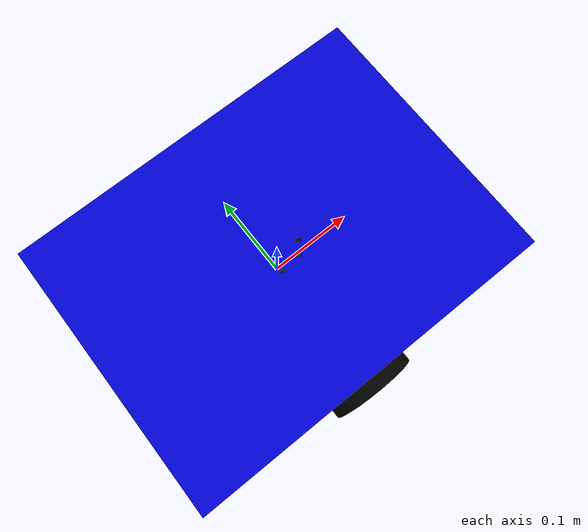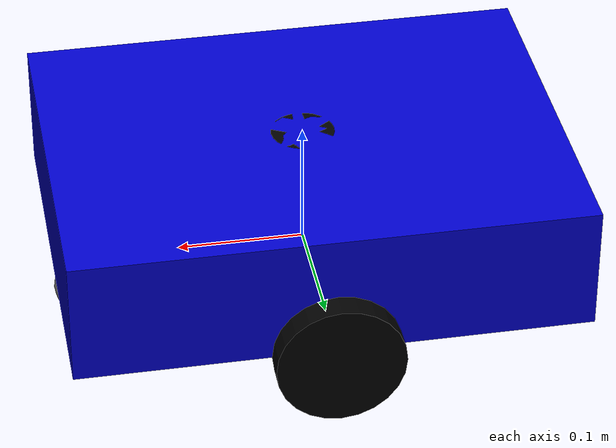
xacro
<?xml version="1.0"?>
<robot xmlns:xacro="http://www.ros.org/wiki/xacro" name="delivery_bot">

    <!-- Properties -->
    <xacro:property name="chassis_length" value="0.4"/>
    <xacro:property name="chassis_width" value="0.3"/>
    <xacro:property name="chassis_height" value="0.1"/>
    <xacro:property name="chassis_mass" value="5.0"/>

    <xacro:property name="wheel_radius" value="0.05"/>
    <xacro:property name="wheel_thickness" value="0.02"/>
    <xacro:property name="wheel_mass" value="0.5"/>
    <xacro:property name="wheel_offset_x" value="0.0"/> <!-- Offset from chassis center along X -->
    <xacro:property name="wheel_offset_y" value="${chassis_width / 2 + wheel_thickness / 2}"/> <!-- Offset from chassis center along Y -->
    <xacro:property name="wheel_offset_z" value="0.0"/> <!-- Offset from chassis bottom along Z -->

    <xacro:property name="caster_radius" value="0.025"/>
    <xacro:property name="caster_mass" value="0.2"/>
    <xacro:property name="caster_offset_x" value="${chassis_length / 2 - caster_radius}"/>

    <xacro:property name="lidar_size" value="0.05"/>
    <xacro:property name="lidar_mass" value="0.1"/>
    <xacro:property name="lidar_offset_z" value="${chassis_height / 2 + lidar_size / 2}"/>

    <!-- Material definitions (optional, for nicer visuals) -->
    <material name="blue">
        <color rgba="0.0 0.0 0.8 1.0"/>
    </material>
    <material name="black">
        <color rgba="0.0 0.0 0.0 1.0"/>
    </material>
    <material name="grey">
        <color rgba="0.5 0.5 0.5 1.0"/>
    </material>

    <!-- Base Link (Chassis) -->
    <link name="base_link">
        <visual>
            <geometry>
                <box size="${chassis_length} ${chassis_width} ${chassis_height}"/>
            </geometry>
            <origin xyz="0 0 ${chassis_height/2}" rpy="0 0 0"/>
            <material name="blue"/>
        </visual>
        <collision>
            <geometry>
                <box size="${chassis_length} ${chassis_width} ${chassis_height}"/>
            </geometry>
            <origin xyz="0 0 ${chassis_height/2}" rpy="0 0 0"/>
        </collision>
        <inertial>
            <mass value="${chassis_mass}"/>
            <inertia ixx="${(1/12) * chassis_mass * (chassis_width*chassis_width + chassis_height*chassis_height)}" ixy="0.0" ixz="0.0"
                     iyy="${(1/12) * chassis_mass * (chassis_length*chassis_length + chassis_height*chassis_height)}" iyz="0.0"
                     izz="${(1/12) * chassis_mass * (chassis_length*chassis_length + chassis_width*chassis_width)}"/>
        </inertial>
    </link>

    <!-- Wheel Macro -->
    <xacro:macro name="wheel" params="prefix reflect">
        <link name="${prefix}_wheel_link">
            <visual>
                <geometry>
                    <cylinder radius="${wheel_radius}" length="${wheel_thickness}"/>
                </geometry>
                <origin xyz="0 0 0" rpy="${pi/2} 0 0"/>
                <material name="black"/>
            </visual>
            <collision>
                <geometry>
                    <cylinder radius="${wheel_radius}" length="${wheel_thickness}"/>
                </geometry>
                <origin xyz="0 0 0" rpy="${pi/2} 0 0"/>
            </collision>
            <inertial>
                <mass value="${wheel_mass}"/>
                <inertia ixx="${(1/12) * wheel_mass * (3*wheel_radius*wheel_radius + wheel_thickness*wheel_thickness)}" ixy="0.0" ixz="0.0"
                         iyy="${(1/12) * wheel_mass * (3*wheel_radius*wheel_radius + wheel_thickness*wheel_thickness)}" iyz="0.0"
                         izz="${(1/2) * wheel_mass * (wheel_radius*wheel_radius)}"/>
            </inertial>
        </link>

        <joint name="${prefix}_wheel_joint" type="continuous">
            <parent link="base_link"/>
            <child link="${prefix}_wheel_link"/>
            <origin xyz="${wheel_offset_x} ${reflect*wheel_offset_y} ${wheel_offset_z}" rpy="0 0 0"/>
            <axis xyz="0 1 0"/>
        </joint>
    </xacro:macro>

    <xacro:wheel prefix="left" reflect="1"/>
    <xacro:wheel prefix="right" reflect="-1"/>

    <!-- Caster Wheel -->
    <link name="caster_wheel_link">
        <visual>
            <geometry>
                <sphere radius="${caster_radius}"/>
            </geometry>
            <origin xyz="0 0 0" rpy="0 0 0"/>
            <material name="grey"/>
        </visual>
        <collision>
            <geometry>
                <sphere radius="${caster_radius}"/>
            </geometry>
            <origin xyz="0 0 0" rpy="0 0 0"/>
        </collision>
        <inertial>
            <mass value="${caster_mass}"/>
            <inertia ixx="${(2/5) * caster_mass * caster_radius*caster_radius}" ixy="0.0" ixz="0.0"
                     iyy="${(2/5) * caster_mass * caster_radius*caster_radius}" iyz="0.0"
                     izz="${(2/5) * caster_mass * caster_radius*caster_radius}"/>
        </inertial>
    </link>

    <joint name="caster_wheel_joint" type="fixed">
        <parent link="base_link"/>
        <child link="caster_wheel_link"/>
        <origin xyz="${caster_offset_x} 0 ${-wheel_radius + caster_radius}" rpy="0 0 0"/>
    </joint>

    <!-- LiDAR Sensor -->
    <link name="lidar_link">
        <visual>
            <geometry>
                <cylinder radius="${lidar_size/2}" length="${lidar_size}"/>
            </geometry>
            <origin xyz="0 0 0" rpy="0 0 0"/>
            <material name="black"/>
        </visual>
        <collision>
            <geometry>
                <cylinder radius="${lidar_size/2}" length="${lidar_size}"/>
            </geometry>
            <origin xyz="0 0 0" rpy="0 0 0"/>
        </collision>
        <inertial>
            <mass value="${lidar_mass}"/>
            <inertia ixx="${(1/12) * lidar_mass * (3*(lidar_size/2)*(lidar_size/2) + lidar_size*lidar_size)}" ixy="0.0" ixz="0.0"
                     iyy="${(1/12) * lidar_mass * (3*(lidar_size/2)*(lidar_size/2) + lidar_size*lidar_size)}" iyz="0.0"
                     izz="${(1/2) * lidar_mass * (lidar_size/2)*(lidar_size/2)}"/>
        </inertial>
    </link>

    <joint name="lidar_joint" type="fixed">
        <parent link="base_link"/>
        <child link="lidar_link"/>
        <origin xyz="0 0 ${lidar_offset_z}" rpy="0 0 0"/>
    </joint>

    <!-- Gazebo Plugins -->

    <!-- Differential Drive -->
    <gazebo>
        <plugin name="differential_drive_controller" filename="libgazebo_ros_diff_drive.so">
            <ros>
            </ros>
            <!-- Update rate in Hz -->
            <update_rate>30</update_rate>

            <!-- wheels -->
            <left_joint>left_wheel_joint</left_joint>
            <right_joint>right_wheel_joint</right_joint>

            <!-- kinematics -->
            <wheel_separation>${2 * wheel_offset_y}</wheel_separation>
            <wheel_diameter>${2 * wheel_radius}</wheel_diameter>

            <!-- limits -->
            <max_wheel_torque>20</max_wheel_torque>
            <max_wheel_acceleration>1.0</max_wheel_acceleration>

            <!-- output -->
            <odometry_frame>odom</odometry_frame>
            <robot_base_frame>base_link</robot_base_frame> <!-- This is the frame published in odom topic -->
            <publish_odom>true</publish_odom>
            <publish_odom_tf>true</publish_odom_tf> <!-- Publish odom to base_link transform -->
            <publish_wheel_tf>false</publish_wheel_tf>

            <odometry_topic>odom</odometry_topic>
            <command_topic>cmd_vel</command_topic> <!-- Subscribes to this topic -->
        </plugin>
    </gazebo>

    <!-- LiDAR Sensor -->
    <gazebo reference="lidar_link">
        <sensor type="ray" name="lidar_sensor">
            <pose>0 0 0 0 0 0</pose>
            <visualize>false</visualize> <!-- Set to true to see rays in Gazebo -->
            <update_rate>10</update_rate> <!-- Hz -->
            <ray>
                <scan>
                    <horizontal>
                        <samples>360</samples> <!-- Number of rays -->
                        <resolution>1</resolution> <!-- Resolution factor (1 means use samples as is) -->
                        <min_angle>-2.35619</min_angle> <!-- -135 degrees -->
                        <max_angle>2.35619</max_angle>   <!-- +135 degrees -->
                    </horizontal>
                </scan>
                <range>
                    <min>0.10</min> <!-- Min range (meters) -->
                    <max>8.0</max>  <!-- Max range (meters) -->
                    <resolution>0.01</resolution> <!-- Range resolution -->
                </range>
                <noise>
                    <type>gaussian</type>
                    <mean>0.0</mean>
                    <stddev>0.01</stddev>
                </noise>
            </ray>
            <plugin name="gazebo_ros_lidar_controller" filename="libgazebo_ros_ray_sensor.so">
                 <ros>
                    <argument>~/out:=scan</argument> <!-- Remap default /lidar_sensor/out to /scan -->
                 </ros>
                <output_type>sensor_msgs/LaserScan</output_type>
                <frame_name>lidar_link</frame_name> <!-- TF frame for the Lidar data -->
            </plugin>
        </sensor>
    </gazebo>

</robot>
